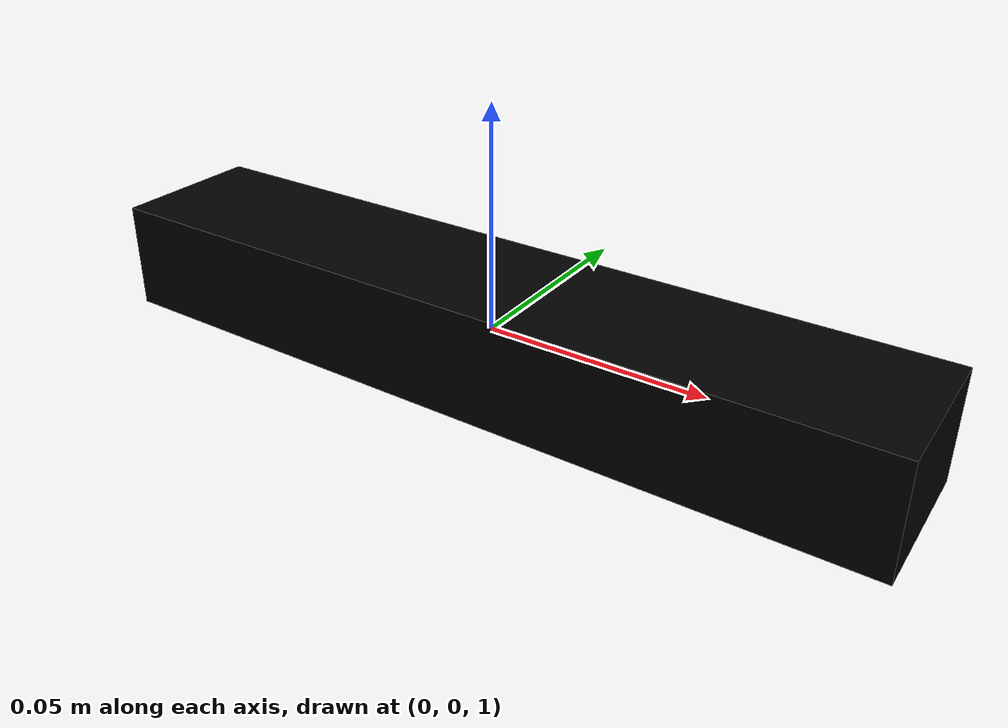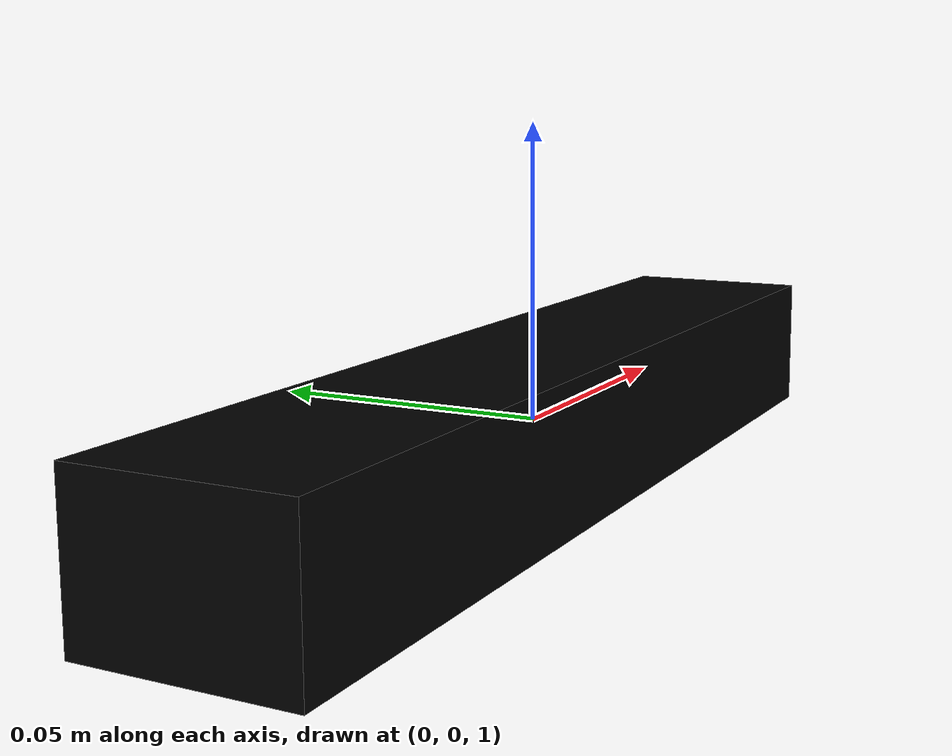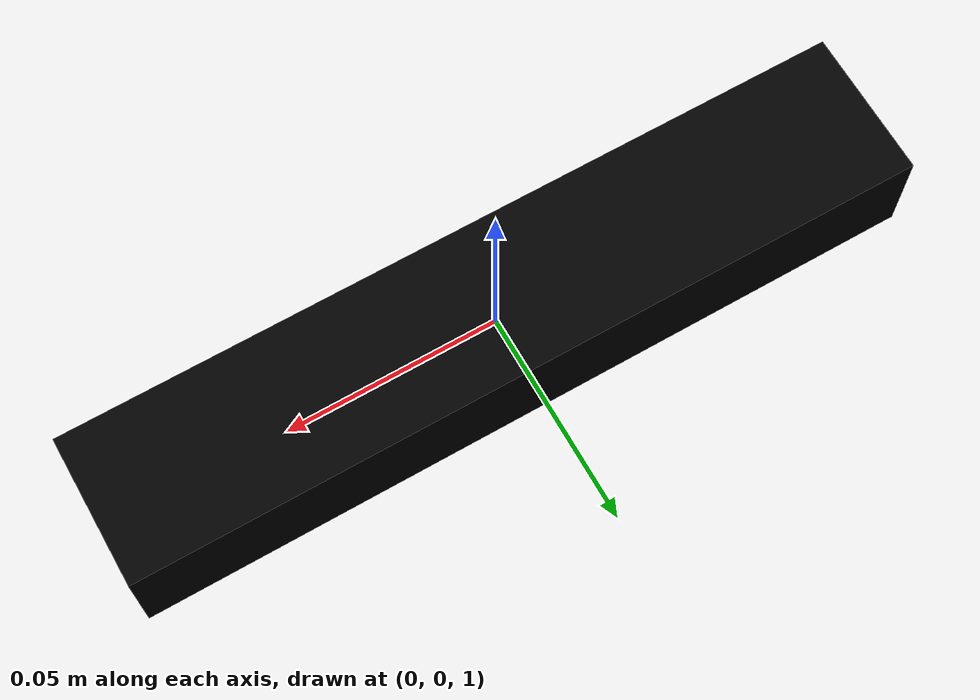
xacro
<?xml version="1.0" ?>
<robot name="xtion_demo" xmlns:xacro="http://ros.org/wiki/xacro">
  <xacro:include filename="$(find erasers_kachaka_vision)/urdf/xtion.urdf.xacro" />

  <link name="_base"/>

  <xacro:asus_camera name="openni" parent="_base" >
    <origin xyz="0 0 1.0" rpy="0 0 1.57"/>
  </xacro:asus_camera>
</robot>

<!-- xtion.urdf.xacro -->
<robot xmlns:xacro="http://ros.org/wiki/xacro">
    <xacro:property name="M_PI" value="3.1415926535897931" />

    <xacro:macro name="asus_camera_model" params="name parent *origin">
      <joint name="${name}_joint" type="fixed">
        <xacro:insert_block name="origin" />
        <parent link="${parent}"/>
        <child link="${name}_link"/>
      </joint>

      <link name="${name}_link">
        <inertial>
          <mass value="0.200" />
          <origin xyz="0 0 0" rpy="0 0 0" />
          <inertia ixx="5.8083e-4" ixy="0" ixz="0" iyy="3.0833e-5" iyz="0" izz="5.9083e-4" />
        </inertial>
        <visual>
          <origin xyz="0 0 0" rpy="0 0 0" />
          <geometry>
            <box size="0.035 0.185 0.025"/>
          </geometry>
          <material name="black">
            <color rgba="0.0 0.0 0.0 1.0"/>
          </material>
        </visual>
        <collision>
          <origin xyz="0 0 0" rpy="0 0 0" />
          <geometry>
            <box size="0.035 0.185 0.025"/>
          </geometry>
        </collision>
      </link>

      <joint name="${name}_depth_joint" type="fixed">
        <origin xyz="0.0 0.049 0.0" rpy="0 0 0" />
        <parent link="${name}_link" />
        <child link="${name}_depth_frame"/>
      </joint>

      <link name="${name}_depth_frame"/>

      <joint name="${name}_depth_optical_joint" type="fixed">
        <origin xyz="0 0 0" rpy="${-M_PI/2} 0.0 ${-M_PI/2}" />
        <parent link="${name}_depth_frame" />
        <child link="${name}_depth_optical_frame"/>
      </joint>

      <link name="${name}_depth_optical_frame"/>

      <joint name="${name}_rgb_joint" type="fixed">
        <origin xyz="0.0 0.022 0.0" rpy="0 0 0" />
        <parent link="${name}_link" />
        <child link="${name}_rgb_frame"/>
      </joint>

      <link name="${name}_rgb_frame"/>

      <joint name="${name}_rgb_optical_joint" type="fixed">
        <origin xyz="0 0 0" rpy="${-M_PI/2} 0.0 ${-M_PI/2}" />
        <parent link="${name}_rgb_frame" />
        <child link="${name}_rgb_optical_frame"/>
      </joint>

      <link name="${name}_rgb_optical_frame"/>
    </xacro:macro>

    <xacro:macro name="asus_camera" params="name parent *origin">
      <xacro:asus_camera_model name="${name}" parent="${parent}">
        <xacro:insert_block name="origin" />
      </xacro:asus_camera_model>

      <!-- ASUS Xtion PRO camera for simulation -->
      <gazebo reference="${name}_depth_frame">
        <sensor type="depth" name="${name}">
          <update_rate>20</update_rate>
          <camera>
            <horizontal_fov>${62.8 * M_PI/180.0}</horizontal_fov>
            <image>
              <format>R8G8B8</format>
              <width>640</width>
              <height>480</height>
            </image>
            <clip>
              <near>0.5</near>
              <far>9</far>
            </clip>
          </camera>
          <plugin name="${name}_camera_controller" filename="libgazebo_ros_openni_kinect.so">
            <alwaysOn>true</alwaysOn>
            <updateRate>20</updateRate>
            <imageTopicName>${name}/rgb/image_raw</imageTopicName>
            <cameraInfoTopicName>${name}/rgb/camera_info</cameraInfoTopicName>
            <depthImageTopicName>${name}/depth/image_raw</depthImageTopicName>
            <depthImageCameraInfoTopicName>${name}/depth/camera_info</depthImageCameraInfoTopicName>
            <pointCloudTopicName>${name}/depth/points</pointCloudTopicName>
            <frameName>${name}_depth_optical_frame</frameName>
            <distortion_k1>0.0</distortion_k1>
            <distortion_k2>0.0</distortion_k2>
            <distortion_k3>0.0</distortion_k3>
            <distortion_t1>0.0</distortion_t1>
            <distortion_t2>0.0</distortion_t2>
          </plugin>
        </sensor>
      </gazebo>
    </xacro:macro>
</robot>
